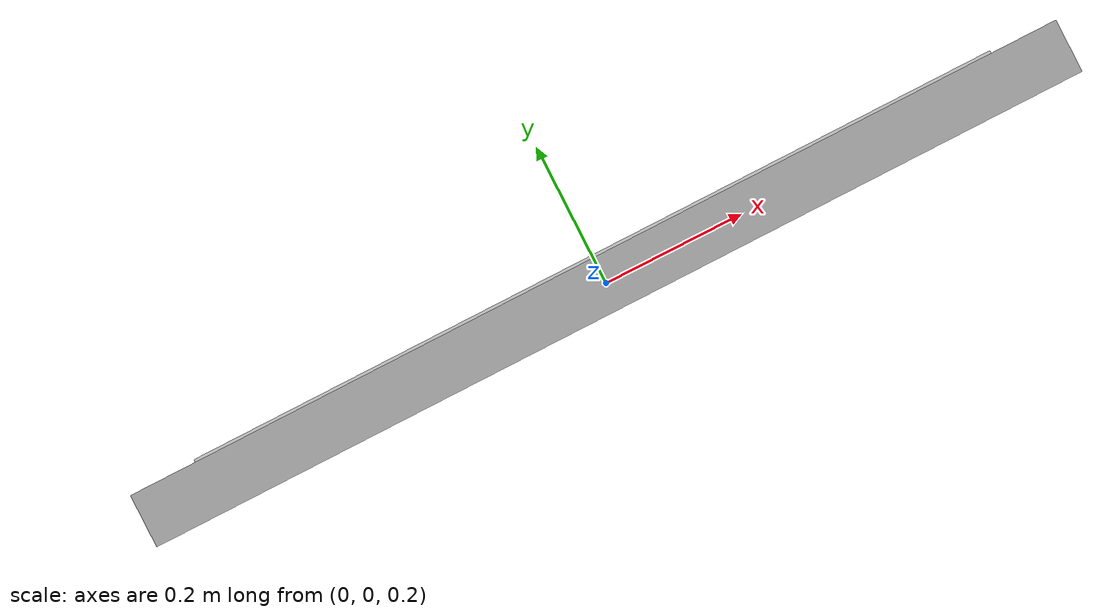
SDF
<?xml version="1.0" ?>
<sdf version="1.5">
  <model name="flag2">
    <pose>0 0 0.625  0 0 0</pose>
    <static>true</static>
    <link name="link">
      <inertial>
        <mass>40.0</mass>
        <inertia>
          <ixx>1</ixx>
          <ixy>0</ixy>
          <ixz>0</ixz>
          <iyy>1</iyy>
          <iyz>0</iyz>
          <izz>1</izz>
        </inertia>
      </inertial>

      <collision name="collision">
        <geometry>
          <box>
              <size>0.9 0.05 0.7</size>
          </box>
        </geometry>
	      <surface>
          <contact>
            <ode>
              <max_vel>0.1</max_vel>
              <min_depth>0.001</min_depth>
            </ode>
          </contact>
        </surface>
      </collision>
      <visual name="visual">
        <geometry>
          <box>
              <size>0.9 0.05 0.7</size>
          </box>
        </geometry>
        <material>
          <script>
            <uri>file://media/materials/scripts/gazebo.material</uri>
            <name>Gazebo/Grey</name>
          </script>
        </material>
      </visual>
      <visual name="visual_qr">
      <pose>0 0.026 0 0 0 0</pose>
        <geometry>
          <box>
            <size>0.8 0.005 0.6</size>
          </box>
        </geometry>
        <material>
          <script>
            <uri>model://flag2/materials/scripts</uri>
            <uri>model://flag2/materials/textures</uri>
            <name>Flag/spain</name>
          </script>
        </material>
      </visual>
    </link>

  </model>
</sdf>
